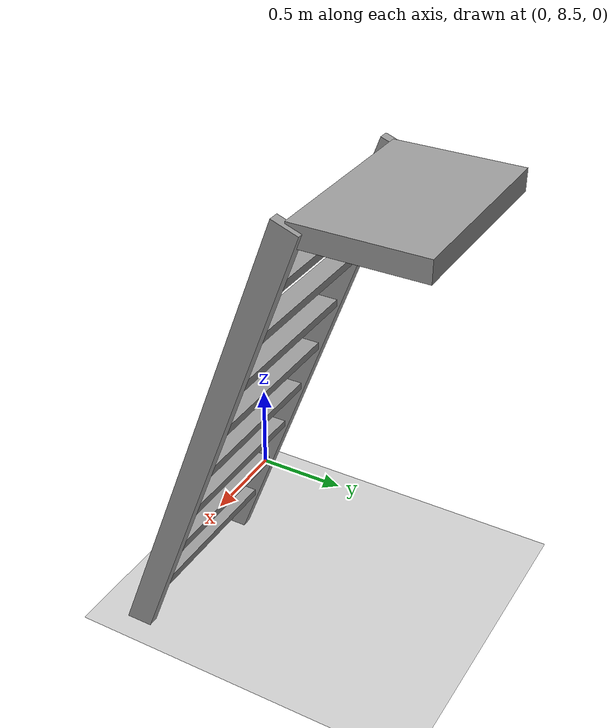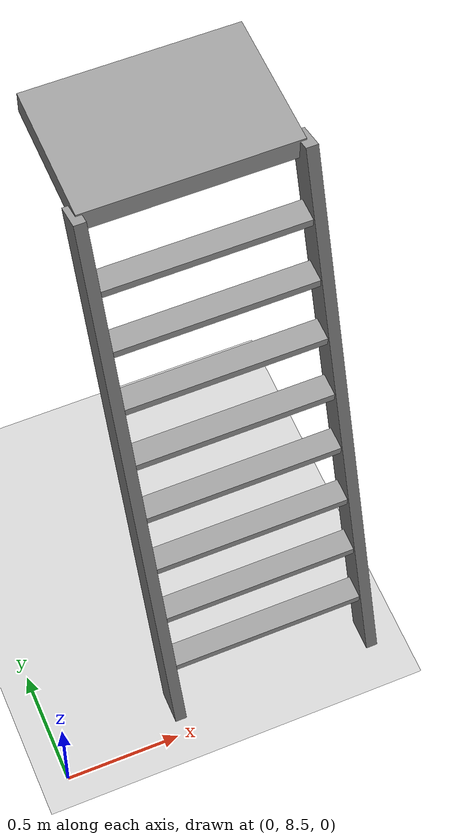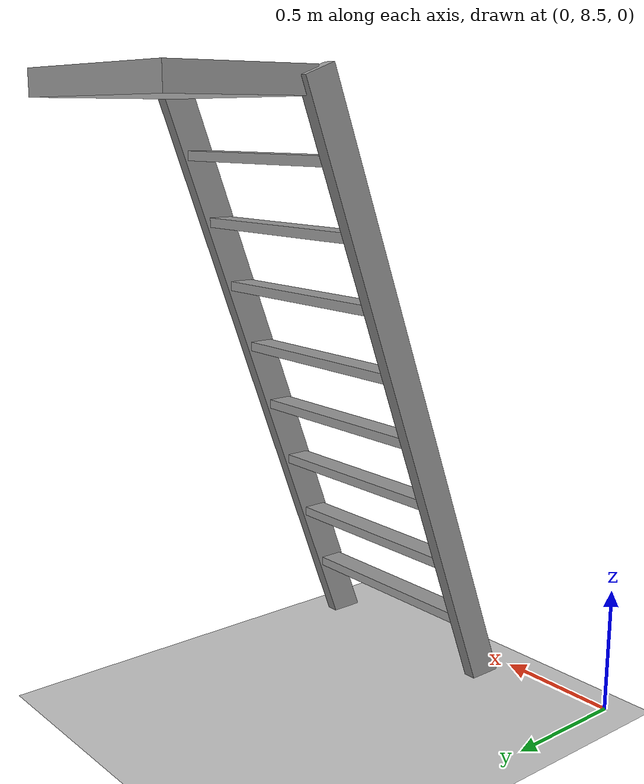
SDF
<sdf version="1.7">
 <world name="default">
  <model name="ground_plane">
   <static>1</static>
   <link name="link">
    <collision name="collision">
     <geometry><plane><normal>0 0 1</normal><size>100 100</size></plane></geometry>
     <surface>
      <contact><collide_bitmask>65535</collide_bitmask></contact>
      <friction><ode><mu>100</mu><mu2>50</mu2></ode></friction>
     </surface>
    </collision>
    <visual name="visual">
     <cast_shadows>0</cast_shadows>
     <geometry><plane><normal>0 0 1</normal><size>100 100</size></plane></geometry>
     <material>
      <script><uri>file://media/materials/scripts/gazebo.material</uri><name>Gazebo/Grey</name></script>
     </material>
    </visual>
   </link>
  </model>
  <model name="drone_collection_zone">
   <static>1</static>
   <link name="sensing_link">
    <gravity>0</gravity>
    <sensor name="object_disposal_contact" type="contact">
     <update_rate>10</update_rate>
     <contact><collision>collision</collision><topic>__default_topic__</topic></contact>
    </sensor>
    <collision name="collision"><geometry><box><size>0.1 2 2</size></box></geometry></collision>
   </link>
   <plugin name="object_disposal_plugin" filename="libObjectDisposalPlugin.so">
    <contact_sensor_name>object_disposal_contact</contact_sensor_name>
    <contacting_box_topic>/ariac/waiting_shipping_box</contacting_box_topic>
    <activation_topic>/ariac/drone_collection_zone/activate_deletion</activation_topic>
    <contact_side_normal>1 0 0</contact_side_normal>
    <disposal_pose>-7.5 -10 -0.5 0 0 0</disposal_pose>
    <update_rate>5</update_rate>
   </plugin>
   <pose>7.4423 1.14907 0 0 -0 0</pose>
  </model>
  <model name="ladder_70deg_0rails">
   <static>1</static>
   <link name="step0">
    <pose>0 0.097059 0.266667 0 -0 0</pose>
    <inertial>
     <mass>9.75482</mass>
     <inertia>
      <ixx>0.00957124</ixx>
      <iyy>0.65963</iyy>
      <izz>0.666842</izz>
      <ixy>0</ixy>
      <ixz>0</ixz>
      <iyz>0</iyz>
     </inertia>
    </inertial>
    <collision name="collision"><geometry><box><size>0.9 0.1016 0.0381</size></box></geometry></collision>
    <visual name="visual">
     <geometry><box><size>0.9 0.1016 0.0381</size></box></geometry>
     <material>
      <script><uri>file://media/materials/scripts/gazebo.material</uri><name>Gazebo/Grey</name></script>
     </material>
    </visual>
   </link>
   <link name="step1">
    <pose>0 0.194117 0.533333 0 -0 0</pose>
    <inertial>
     <mass>9.75482</mass>
     <inertia>
      <ixx>0.00957124</ixx>
      <iyy>0.65963</iyy>
      <izz>0.666842</izz>
      <ixy>0</ixy>
      <ixz>0</ixz>
      <iyz>0</iyz>
     </inertia>
    </inertial>
    <collision name="collision"><geometry><box><size>0.9 0.1016 0.0381</size></box></geometry></collision>
    <visual name="visual">
     <geometry><box><size>0.9 0.1016 0.0381</size></box></geometry>
     <material>
      <script><uri>file://media/materials/scripts/gazebo.material</uri><name>Gazebo/Grey</name></script>
     </material>
    </visual>
   </link>
   <link name="step2">
    <pose>0 0.291176 0.8 0 -0 0</pose>
    <inertial>
     <mass>9.75482</mass>
     <inertia>
      <ixx>0.00957124</ixx>
      <iyy>0.65963</iyy>
      <izz>0.666842</izz>
      <ixy>0</ixy>
      <ixz>0</ixz>
      <iyz>0</iyz>
     </inertia>
    </inertial>
    <collision name="collision"><geometry><box><size>0.9 0.1016 0.0381</size></box></geometry></collision>
    <visual name="visual">
     <geometry><box><size>0.9 0.1016 0.0381</size></box></geometry>
     <material>
      <script><uri>file://media/materials/scripts/gazebo.material</uri><name>Gazebo/Grey</name></script>
     </material>
    </visual>
   </link>
   <link name="step3">
    <pose>0 0.388235 1.06667 0 -0 0</pose>
    <inertial>
     <mass>9.75482</mass>
     <inertia>
      <ixx>0.00957124</ixx>
      <iyy>0.65963</iyy>
      <izz>0.666842</izz>
      <ixy>0</ixy>
      <ixz>0</ixz>
      <iyz>0</iyz>
     </inertia>
    </inertial>
    <collision name="collision"><geometry><box><size>0.9 0.1016 0.0381</size></box></geometry></collision>
    <visual name="visual">
     <geometry><box><size>0.9 0.1016 0.0381</size></box></geometry>
     <material>
      <script><uri>file://media/materials/scripts/gazebo.material</uri><name>Gazebo/Grey</name></script>
     </material>
    </visual>
   </link>
   <link name="step4">
    <pose>0 0.485294 1.33333 0 -0 0</pose>
    <inertial>
     <mass>9.75482</mass>
     <inertia>
      <ixx>0.00957124</ixx>
      <iyy>0.65963</iyy>
      <izz>0.666842</izz>
      <ixy>0</ixy>
      <ixz>0</ixz>
      <iyz>0</iyz>
     </inertia>
    </inertial>
    <collision name="collision"><geometry><box><size>0.9 0.1016 0.0381</size></box></geometry></collision>
    <visual name="visual">
     <geometry><box><size>0.9 0.1016 0.0381</size></box></geometry>
     <material>
      <script><uri>file://media/materials/scripts/gazebo.material</uri><name>Gazebo/Grey</name></script>
     </material>
    </visual>
   </link>
   <link name="step5">
    <pose>0 0.582352 1.6 0 -0 0</pose>
    <inertial>
     <mass>9.75482</mass>
     <inertia>
      <ixx>0.00957124</ixx>
      <iyy>0.65963</iyy>
      <izz>0.666842</izz>
      <ixy>0</ixy>
      <ixz>0</ixz>
      <iyz>0</iyz>
     </inertia>
    </inertial>
    <collision name="collision"><geometry><box><size>0.9 0.1016 0.0381</size></box></geometry></collision>
    <visual name="visual">
     <geometry><box><size>0.9 0.1016 0.0381</size></box></geometry>
     <material>
      <script><uri>file://media/materials/scripts/gazebo.material</uri><name>Gazebo/Grey</name></script>
     </material>
    </visual>
   </link>
   <link name="step6">
    <pose>0 0.679411 1.86667 0 -0 0</pose>
    <inertial>
     <mass>9.75482</mass>
     <inertia>
      <ixx>0.00957124</ixx>
      <iyy>0.65963</iyy>
      <izz>0.666842</izz>
      <ixy>0</ixy>
      <ixz>0</ixz>
      <iyz>0</iyz>
     </inertia>
    </inertial>
    <collision name="collision"><geometry><box><size>0.9 0.1016 0.0381</size></box></geometry></collision>
    <visual name="visual">
     <geometry><box><size>0.9 0.1016 0.0381</size></box></geometry>
     <material>
      <script><uri>file://media/materials/scripts/gazebo.material</uri><name>Gazebo/Grey</name></script>
     </material>
    </visual>
   </link>
   <link name="step7">
    <pose>0 0.77647 2.13333 0 -0 0</pose>
    <inertial>
     <mass>9.75482</mass>
     <inertia>
      <ixx>0.00957124</ixx>
      <iyy>0.65963</iyy>
      <izz>0.666842</izz>
      <ixy>0</ixy>
      <ixz>0</ixz>
      <iyz>0</iyz>
     </inertia>
    </inertial>
    <collision name="collision"><geometry><box><size>0.9 0.1016 0.0381</size></box></geometry></collision>
    <visual name="visual">
     <geometry><box><size>0.9 0.1016 0.0381</size></box></geometry>
     <material>
      <script><uri>file://media/materials/scripts/gazebo.material</uri><name>Gazebo/Grey</name></script>
     </material>
    </visual>
   </link>
   <link name="landing">
    <pose>0 1.17353 2.4 0 -0 0</pose>
    <inertial>
     <mass>57.6072</mass>
     <inertia><ixx>1.73518</ixx><iyy>3.89545</iyy><izz>5.6167</izz><ixy>0</ixy><ixz>0</ixz><iyz>0</iyz></inertia>
    </inertial>
    <collision name="collision"><geometry><box><size>0.9 0.6 0.1016</size></box></geometry></collision>
    <visual name="visual">
     <geometry><box><size>0.9 0.6 0.1016</size></box></geometry>
     <material>
      <script><uri>file://media/materials/scripts/gazebo.material</uri><name>Gazebo/Grey</name></script>
     </material>
    </visual>
   </link>
   <link name="left_side_wall">
    <pose>-0.45 0.436764 1.2 1.22173 -0 0</pose>
    <collision name="collision"><geometry><box><size>0.0508 2.63403 0.13</size></box></geometry></collision>
    <visual name="visual">
     <geometry><box><size>0.0508 2.63403 0.13</size></box></geometry>
     <material>
      <script><uri>file://media/materials/scripts/gazebo.material</uri><name>Gazebo/Grey</name></script>
     </material>
    </visual>
   </link>
   <link name="right_side_wall">
    <pose>0.45 0.436764 1.2 1.22173 -0 0</pose>
    <collision name="collision"><geometry><box><size>0.0508 2.63403 0.13</size></box></geometry></collision>
    <visual name="visual">
     <geometry><box><size>0.0508 2.63403 0.13</size></box></geometry>
     <material>
      <script><uri>file://media/materials/scripts/gazebo.material</uri><name>Gazebo/Grey</name></script>
     </material>
    </visual>
   </link>
   <pose>0.992477 8.63607 0 0 -0 0</pose>
  </model>
 </world>
</sdf>
